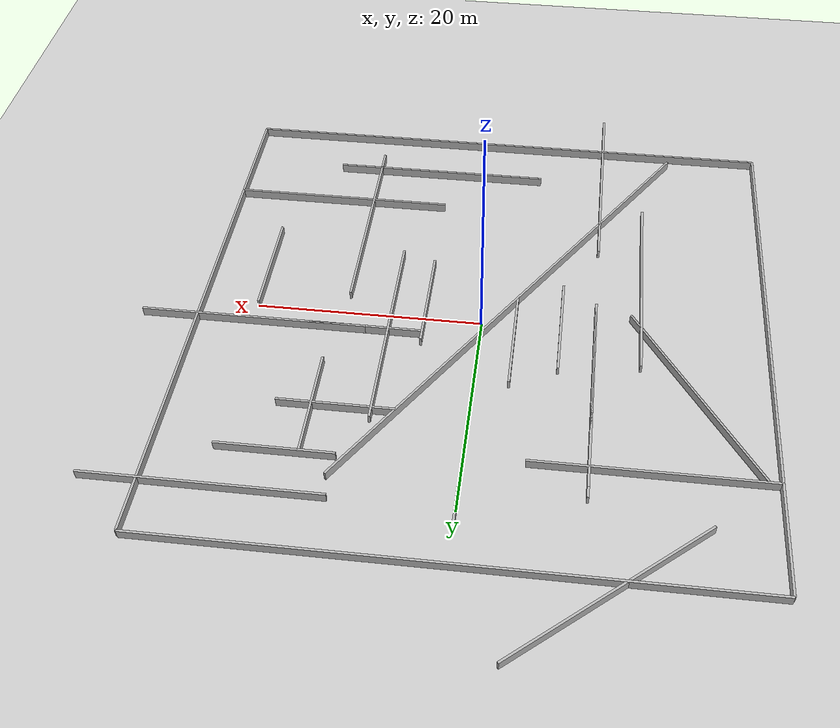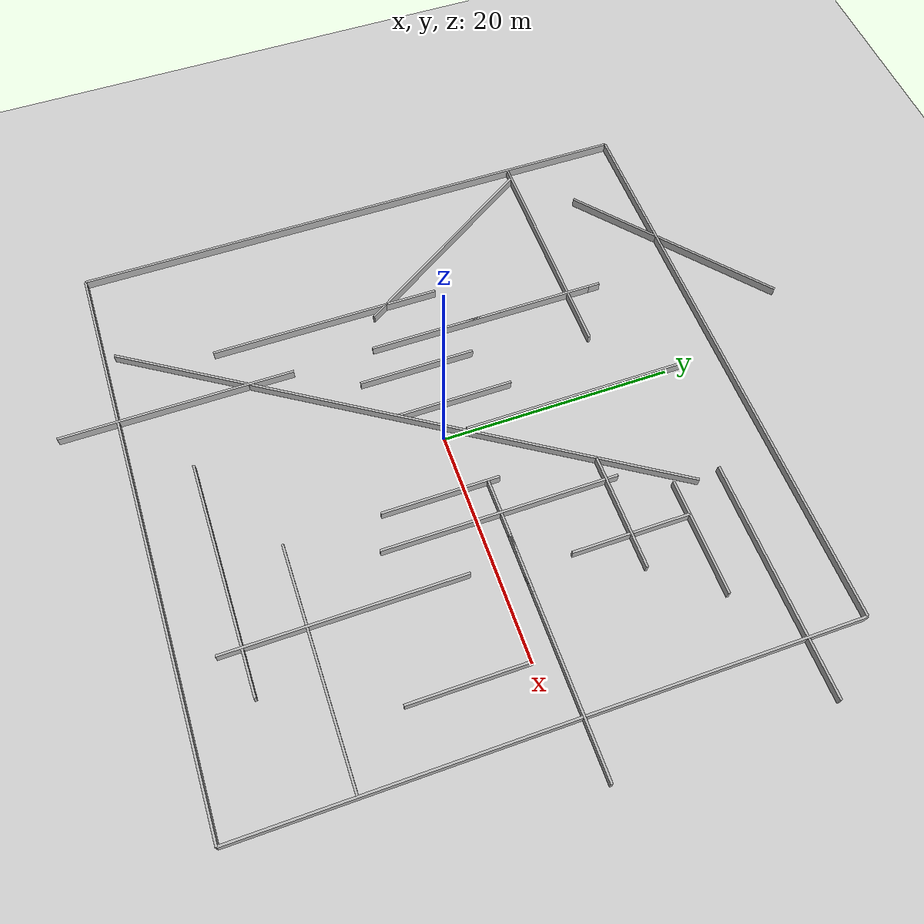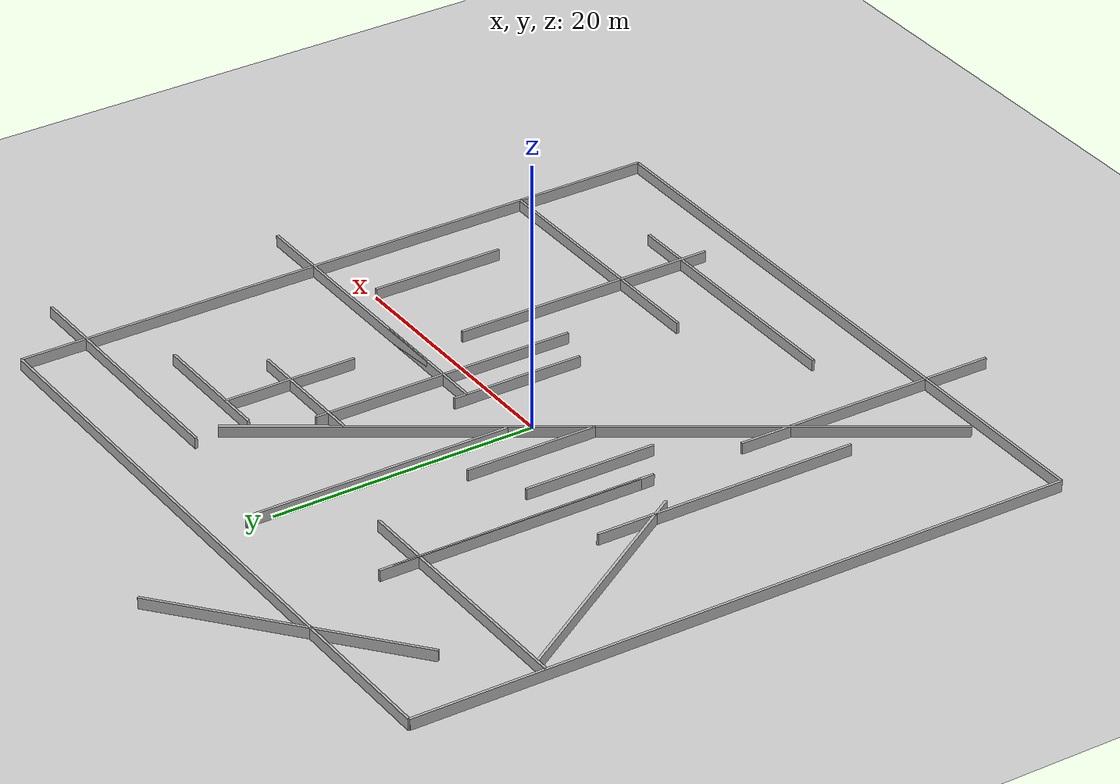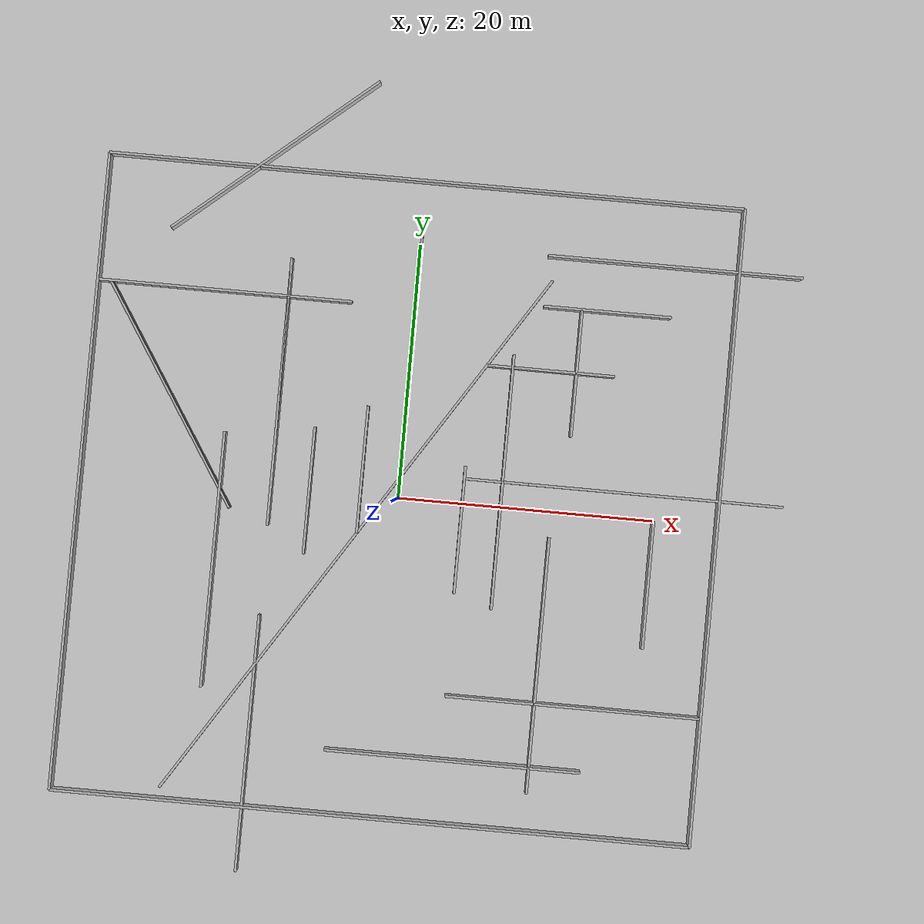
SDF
<sdf version='1.10'>
  <world name='empty'>
    <physics name='1ms' type='ignored'>
      <max_step_size>0.001</max_step_size>
      <real_time_factor>1</real_time_factor>
      <real_time_update_rate>1000</real_time_update_rate>
    </physics>
    <plugin name='gz::sim::systems::Physics' filename='gz-sim-physics-system'/>
    <plugin name='gz::sim::systems::UserCommands' filename='gz-sim-user-commands-system'/>
    <plugin name='gz::sim::systems::SceneBroadcaster' filename='gz-sim-scene-broadcaster-system'/>
    <plugin name='gz::sim::systems::Contact' filename='gz-sim-contact-system'/>
    <plugin
        filename="gz-sim-sensors-system"
        name="gz::sim::systems::Sensors">
        <render_engine>ogre2</render_engine>
    </plugin>
    <gravity>0 0 -9.8000000000000007</gravity>
    <magnetic_field>5.5644999999999998e-06 2.2875799999999999e-05 -4.2388400000000002e-05</magnetic_field>
    <atmosphere type='adiabatic'/>
    <scene>
      <ambient>0.400000006 0.400000006 0.400000006 1</ambient>
      <background>0.699999988 0.699999988 0.699999988 1</background>
      <shadows>true</shadows>
    </scene>
    <model name='ground_plane'>
      <static>true</static>
      <link name='link'>
        <collision name='collision'>
          <geometry>
            <plane>
              <normal>0 0 1</normal>
              <size>100 100</size>
            </plane>
          </geometry>
          <surface>
            <friction>
              <ode/>
            </friction>
            <bounce/>
            <contact/>
          </surface>
        </collision>
        <visual name='visual'>
          <geometry>
            <plane>
              <normal>0 0 1</normal>
              <size>100 100</size>
            </plane>
          </geometry>
          <material>
            <ambient>0.800000012 0.800000012 0.800000012 1</ambient>
            <diffuse>0.800000012 0.800000012 0.800000012 1</diffuse>
            <specular>0.800000012 0.800000012 0.800000012 1</specular>
          </material>
        </visual>
        <pose>0 0 0 0 0 0</pose>
        <inertial>
          <pose>0 0 0 0 0 0</pose>
          <mass>1</mass>
          <inertia>
            <ixx>1</ixx>
            <ixy>0</ixy>
            <ixz>0</ixz>
            <iyy>1</iyy>
            <iyz>0</iyz>
            <izz>1</izz>
          </inertia>
        </inertial>
        <enable_wind>false</enable_wind>
      </link>
      <pose>0 0 0 0 0 0</pose>
      <self_collide>false</self_collide>
    </model>
    <light name='sun' type='directional'>
      <pose>0 0 10 0 0 0</pose>
      <cast_shadows>true</cast_shadows>
      <intensity>1</intensity>
      <direction>-0.5 0.10000000000000001 -0.90000000000000002</direction>
      <diffuse>0.800000012 0.800000012 0.800000012 1</diffuse>
      <specular>0.200000003 0.200000003 0.200000003 1</specular>
      <attenuation>
        <range>1000</range>
        <linear>0.01</linear>
        <constant>0.90000000000000002</constant>
        <quadratic>0.001</quadratic>
      </attenuation>
      <spot>
        <inner_angle>0</inner_angle>
        <outer_angle>0</outer_angle>
        <falloff>0</falloff>
      </spot>
    </light>

<include>
  <uri>model://50m_wall</uri>
  <name>parede_norte</name>
  <pose>25 0 0 0 0 1.57</pose>
</include>

<include>
  <uri>model://50m_wall</uri>
  <name>parede_sul</name>
  <pose>-25 0 0 0 0 1.57</pose>
</include>

<include>
  <uri>model://50m_wall</uri>
  <name>parede_leste</name>
  <pose>0 -25 0 0 0 0</pose>
</include>

<include>
  <uri>model://50m_wall</uri>
  <name>parede_oeste</name>
  <pose>0 25 0 0 0 0</pose>
</include>

<include>
  <uri>model://10m_wall</uri>
  <name>10wall_01</name>
  <pose>5 -2 0.0 0 0 1.57</pose>
</include>

<include>
  <uri>model://10m_wall</uri>
  <name>10wall_02</name>
  <pose>-7 0 0.0 0 0 1.57</pose>
</include>

<include>
  <uri>model://10m_wall</uri>
  <name>10wall_03</name>
  <pose>10 2 0.0 0 0 0</pose>
</include>

<include>
  <uri>model://10m_wall</uri>
  <name>10wall_04</name>
  <pose>-3 2 0.0 0 0 1.57</pose>
</include>

<include>
  <uri>model://10m_wall</uri>
  <name>10wall_05</name>
  <pose>15 16 0.0 0 0 0</pose>
</include>

<include>
  <uri>model://10m_wall</uri>
  <name>10wall_06</name>
  <pose>20 -5 0.0 0 0 1.57</pose>
</include>

<include>
  <uri>model://10m_wall</uri>
  <name>10wall_07</name>
  <pose>13 11 0.0 0 0 1.57</pose>
</include>

<include>
  <uri>model://10m_wall</uri>
  <name>10wall_08</name>
  <pose>11 11 0.0 0 0 0</pose>
</include>

<include>
  <uri>model://50m_wall</uri>
  <name>10wall_09</name>
  <pose>-3 -3 0.0 0 0 1</pose>
</include>

<include>
  <uri>model://20m_wall</uri>
  <name>20wall_01</name>
  <pose>12 -12 0.0 0 0 1.57</pose>
</include>

<include>
  <uri>model://20m_wall</uri>
  <name>20wall_02</name>
  <pose>-15 15 0.0 0 0 0</pose>
</include>

<include>
  <uri>model://20m_wall</uri>
  <name>20wall_03</name>
  <pose>-10 8 0.0 0 0 1.57</pose>
</include>

<include>
  <uri>model://20m_wall</uri>
  <name>20wall_04</name>
  <pose>20 20 0.0 0 0 0</pose>
</include>

<include>
  <uri>model://20m_wall</uri>
  <name>20wall_05</name>
  <pose>-10 7 0.0 0 0 1.57</pose>
</include>

<include>
  <uri>model://20m_wall</uri>
  <name>20wall_06</name>
  <pose>-12 26 0.0 0 0 0.7</pose>
</include>

<include>
  <uri>model://20m_wall</uri>
  <name>20wall_07</name>
  <pose>-14 -6 0.0 0 0 1.57</pose>
</include>

<include>
  <uri>model://20m_wall</uri>
  <name>20wall_08</name>
  <pose>0 12 0.0 0 0 1.57</pose>
</include>

<include>
  <uri>model://20m_wall</uri>
  <name>20wall_09</name>
  <pose>-18.5 6.5 0.0 0 0 -1</pose>
</include>

<include>
  <uri>model://20m_wall</uri>
  <name>20wall_10</name>
  <pose>8 2 0.0 0 0 1.57</pose>
</include>

<include>
  <uri>model://20m_wall</uri>
  <name>20wall_11</name>
  <pose>20 2 0.0 0 0 0</pose>
</include>

<include>
  <uri>model://20m_wall</uri>
  <name>20wall_12</name>
  <pose>6 -20 0.0 0 0 0</pose>
</include>

<include>
  <uri>model://20m_wall</uri>
  <name>20wall_13</name>
  <pose>-10 -20 0.0 0 0 1.57</pose>
</include>

<include>
  <uri>model://20m_wall</uri>
  <name>20wall_14</name>
  <pose>15 -15 0.0 0 0 0</pose>
</include>

  </world>
</sdf>

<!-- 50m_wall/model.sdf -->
<sdf version="1.6">
  <model name="parede_50m">
    <static>true</static>

    <pose>0 0 0.75 0 0 0</pose>

    <link name="link">
      <collision name="collision">
        <geometry>
          <box>
            <size>50 0.2 1.5</size>
          </box>
        </geometry>
      </collision>
      <visual name="visual">
        <geometry>
          <box>
            <size>50 0.2 1.5</size>
          </box>
        </geometry>
      </visual>
    </link>
  </model>
</sdf>

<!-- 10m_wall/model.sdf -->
<sdf version="1.6">
  <model name="parede_5m">
    <static>true</static>

    <pose>0 0 0.75 0 0 0</pose>

    <link name="link">
      <collision name="collision">
        <geometry>
          <box>
            <size>10 0.2 1.5</size>
          </box>
        </geometry>
      </collision>
      <visual name="visual">
        <geometry>
          <box>
            <size>10 0.2 1.5</size>
          </box>
        </geometry>
      </visual>
    </link>
  </model>
</sdf>

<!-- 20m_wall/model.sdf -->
<sdf version="1.6">
  <model name="parede_20m">
    <static>true</static>

    <pose>0 0 0.75 0 0 0</pose>

    <link name="link">
      <collision name="collision">
        <geometry>
          <box>
            <size>20 0.2 1.5</size>
          </box>
        </geometry>
      </collision>
      <visual name="visual">
        <geometry>
          <box>
            <size>20 0.2 1.5</size>
          </box>
        </geometry>
      </visual>
    </link>
  </model>
</sdf>
